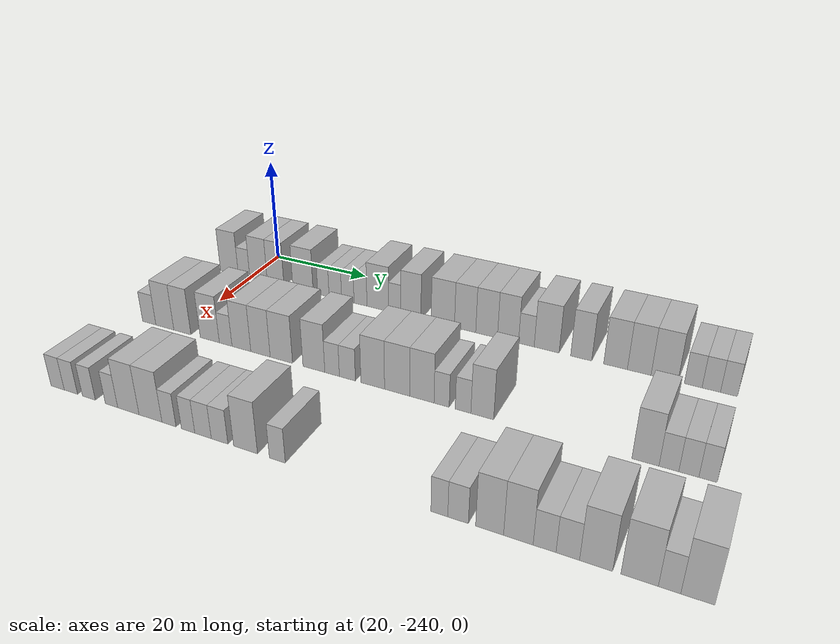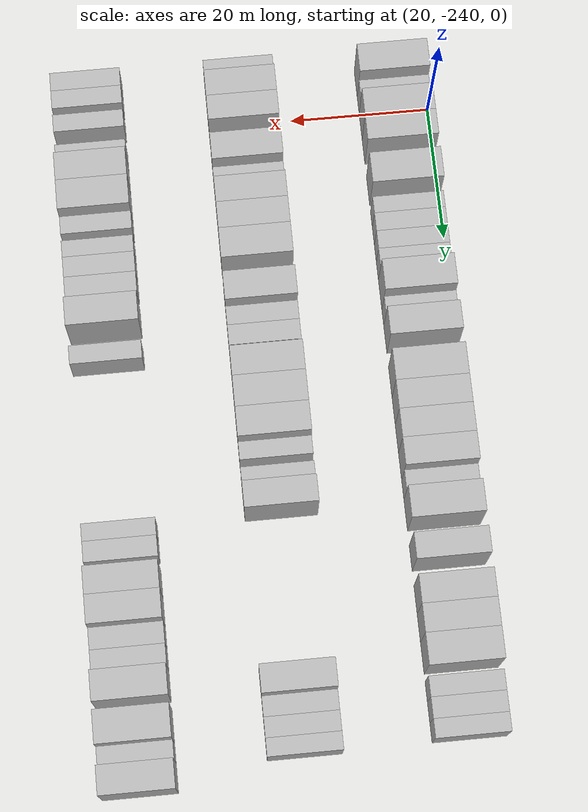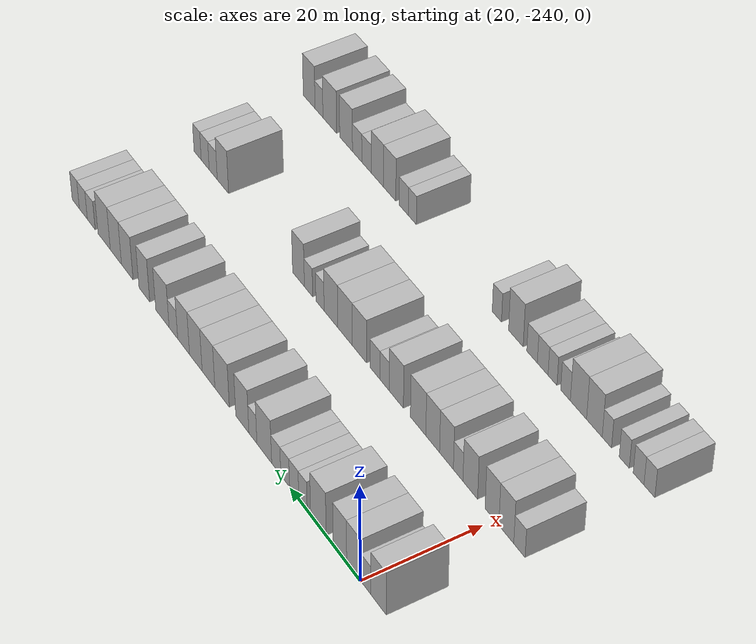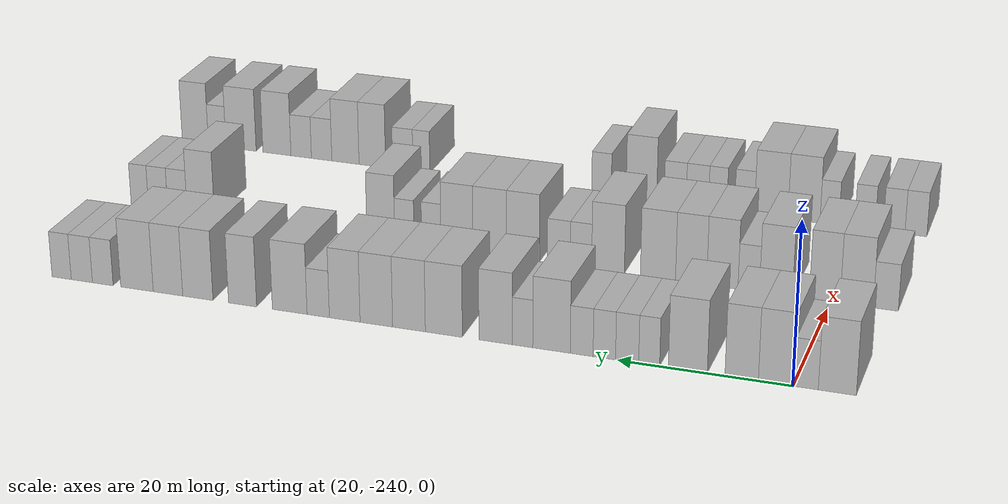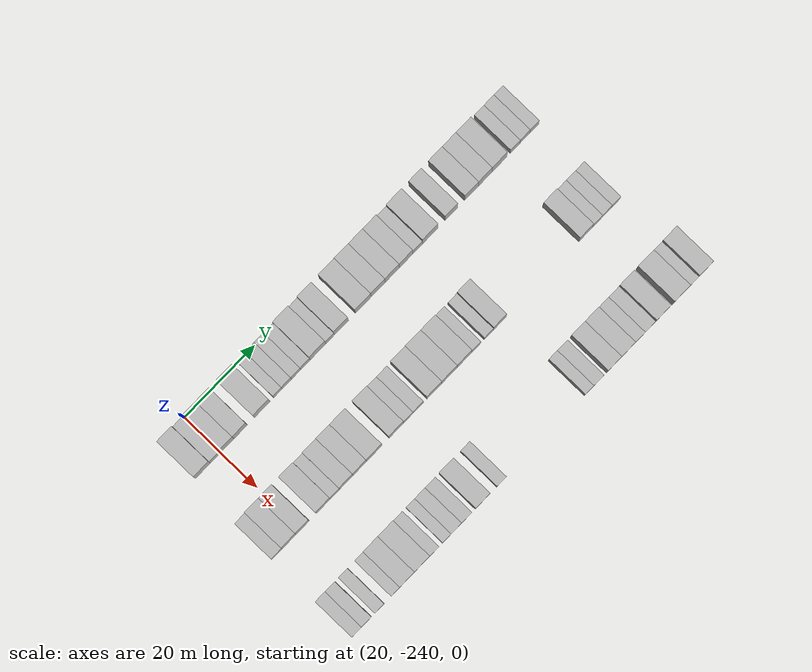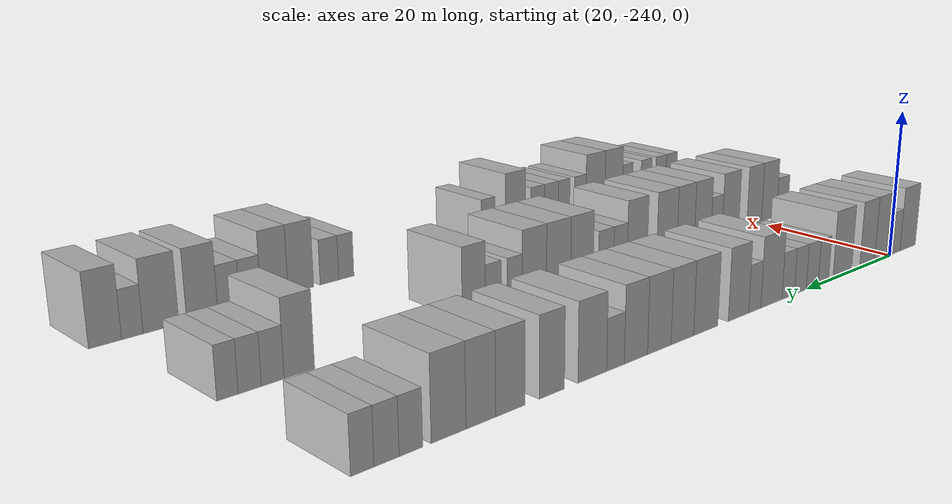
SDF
<sdf version="1.6">
 <world name="default">
  <model name="building_1">
   <static>1</static>
   <pose>25.0000 -244.8970 0 0.000000 0.000000 0.000000</pose>
   <link name="link">
    <pose>0 0 4.50 0 0 0</pose>
    <collision name="collision"><geometry><box><size>10.0000 4.2061 9.0000</size></box></geometry></collision>
    <visual name="visual">
     <cast_shadows>0</cast_shadows>
     <geometry><box><size>10.0000 4.2061 9.0000</size></box></geometry>
     <material>
      <script>
       <uri>model://HANNAS_wall/materials/scripts</uri>
       <uri>model://HANNAS_wall/materials/textures</uri>
       <name>vrc/HANNAS_wall</name>
      </script>
     </material>
    </visual>
   </link>
  </model>
  <model name="building_2">
   <static>1</static>
   <pose>25.0000 -241.4556 0 0.000000 0.000000 0.000000</pose>
   <link name="link">
    <pose>0 0 3.00 0 0 0</pose>
    <collision name="collision"><geometry><box><size>10.0000 2.6767 6.0000</size></box></geometry></collision>
    <visual name="visual">
     <cast_shadows>0</cast_shadows>
     <geometry><box><size>10.0000 2.6767 6.0000</size></box></geometry>
     <material>
      <script>
       <uri>model://HANNAS_wall/materials/scripts</uri>
       <uri>model://HANNAS_wall/materials/textures</uri>
       <name>vrc/HANNAS_wall</name>
      </script>
     </material>
    </visual>
   </link>
  </model>
  <model name="building_3">
   <static>1</static>
   <pose>25.0000 -238.1111 0 0.000000 0.000000 0.000000</pose>
   <link name="link">
    <pose>0 0 4.50 0 0 0</pose>
    <collision name="collision"><geometry><box><size>10.0000 4.0122 9.0000</size></box></geometry></collision>
    <visual name="visual">
     <cast_shadows>0</cast_shadows>
     <geometry><box><size>10.0000 4.0122 9.0000</size></box></geometry>
     <material>
      <script>
       <uri>model://HANNAS_wall/materials/scripts</uri>
       <uri>model://HANNAS_wall/materials/textures</uri>
       <name>vrc/HANNAS_wall</name>
      </script>
     </material>
    </visual>
   </link>
  </model>
  <model name="building_4">
   <static>1</static>
   <pose>25.0000 -234.2194 0 0.000000 0.000000 0.000000</pose>
   <link name="link">
    <pose>0 0 4.50 0 0 0</pose>
    <collision name="collision"><geometry><box><size>10.0000 3.7712 9.0000</size></box></geometry></collision>
    <visual name="visual">
     <cast_shadows>0</cast_shadows>
     <geometry><box><size>10.0000 3.7712 9.0000</size></box></geometry>
     <material>
      <script>
       <uri>model://HANNAS_wall/materials/scripts</uri>
       <uri>model://HANNAS_wall/materials/textures</uri>
       <name>vrc/HANNAS_wall</name>
      </script>
     </material>
    </visual>
   </link>
  </model>
  <model name="building_5">
   <static>1</static>
   <pose>25.0000 -228.1058 0 0.000000 0.000000 0.000000</pose>
   <link name="link">
    <pose>0 0 4.50 0 0 0</pose>
    <collision name="collision"><geometry><box><size>10.0000 4.4559 9.0000</size></box></geometry></collision>
    <visual name="visual">
     <cast_shadows>0</cast_shadows>
     <geometry><box><size>10.0000 4.4559 9.0000</size></box></geometry>
     <material>
      <script>
       <uri>model://HANNAS_wall/materials/scripts</uri>
       <uri>model://HANNAS_wall/materials/textures</uri>
       <name>vrc/HANNAS_wall</name>
      </script>
     </material>
    </visual>
   </link>
  </model>
  <model name="building_6">
   <static>1</static>
   <pose>25.0000 -223.6642 0 0.000000 0.000000 0.000000</pose>
   <link name="link">
    <pose>0 0 3.00 0 0 0</pose>
    <collision name="collision"><geometry><box><size>10.0000 2.4274 6.0000</size></box></geometry></collision>
    <visual name="visual">
     <cast_shadows>0</cast_shadows>
     <geometry><box><size>10.0000 2.4274 6.0000</size></box></geometry>
     <material>
      <script>
       <uri>model://HANNAS_wall/materials/scripts</uri>
       <uri>model://HANNAS_wall/materials/textures</uri>
       <name>vrc/HANNAS_wall</name>
      </script>
     </material>
    </visual>
   </link>
  </model>
  <model name="building_7">
   <static>1</static>
   <pose>25.0000 -221.1104 0 0.000000 0.000000 0.000000</pose>
   <link name="link">
    <pose>0 0 3.00 0 0 0</pose>
    <collision name="collision"><geometry><box><size>10.0000 2.6801 6.0000</size></box></geometry></collision>
    <visual name="visual">
     <cast_shadows>0</cast_shadows>
     <geometry><box><size>10.0000 2.6801 6.0000</size></box></geometry>
     <material>
      <script>
       <uri>model://HANNAS_wall/materials/scripts</uri>
       <uri>model://HANNAS_wall/materials/textures</uri>
       <name>vrc/HANNAS_wall</name>
      </script>
     </material>
    </visual>
   </link>
  </model>
  <model name="building_8">
   <static>1</static>
   <pose>25.0000 -218.4601 0 0.000000 0.000000 0.000000</pose>
   <link name="link">
    <pose>0 0 3.00 0 0 0</pose>
    <collision name="collision"><geometry><box><size>10.0000 2.6207 6.0000</size></box></geometry></collision>
    <visual name="visual">
     <cast_shadows>0</cast_shadows>
     <geometry><box><size>10.0000 2.6207 6.0000</size></box></geometry>
     <material>
      <script>
       <uri>model://HANNAS_wall/materials/scripts</uri>
       <uri>model://HANNAS_wall/materials/textures</uri>
       <name>vrc/HANNAS_wall</name>
      </script>
     </material>
    </visual>
   </link>
  </model>
  <model name="building_9">
   <static>1</static>
   <pose>25.0000 -215.8077 0 0.000000 0.000000 0.000000</pose>
   <link name="link">
    <pose>0 0 3.00 0 0 0</pose>
    <collision name="collision"><geometry><box><size>10.0000 2.6840 6.0000</size></box></geometry></collision>
    <visual name="visual">
     <cast_shadows>0</cast_shadows>
     <geometry><box><size>10.0000 2.6840 6.0000</size></box></geometry>
     <material>
      <script>
       <uri>model://HANNAS_wall/materials/scripts</uri>
       <uri>model://HANNAS_wall/materials/textures</uri>
       <name>vrc/HANNAS_wall</name>
      </script>
     </material>
    </visual>
   </link>
  </model>
  <model name="building_10">
   <static>1</static>
   <pose>25.0000 -212.2497 0 0.000000 0.000000 0.000000</pose>
   <link name="link">
    <pose>0 0 4.50 0 0 0</pose>
    <collision name="collision"><geometry><box><size>10.0000 4.4320 9.0000</size></box></geometry></collision>
    <visual name="visual">
     <cast_shadows>0</cast_shadows>
     <geometry><box><size>10.0000 4.4320 9.0000</size></box></geometry>
     <material>
      <script>
       <uri>model://HANNAS_wall/materials/scripts</uri>
       <uri>model://HANNAS_wall/materials/textures</uri>
       <name>vrc/HANNAS_wall</name>
      </script>
     </material>
    </visual>
   </link>
  </model>
  <model name="building_11">
   <static>1</static>
   <pose>25.0000 -208.8162 0 0.000000 0.000000 0.000000</pose>
   <link name="link">
    <pose>0 0 3.00 0 0 0</pose>
    <collision name="collision"><geometry><box><size>10.0000 2.4350 6.0000</size></box></geometry></collision>
    <visual name="visual">
     <cast_shadows>0</cast_shadows>
     <geometry><box><size>10.0000 2.4350 6.0000</size></box></geometry>
     <material>
      <script>
       <uri>model://HANNAS_wall/materials/scripts</uri>
       <uri>model://HANNAS_wall/materials/textures</uri>
       <name>vrc/HANNAS_wall</name>
      </script>
     </material>
    </visual>
   </link>
  </model>
  <model name="building_12">
   <static>1</static>
   <pose>25.0000 -205.5930 0 0.000000 0.000000 0.000000</pose>
   <link name="link">
    <pose>0 0 4.50 0 0 0</pose>
    <collision name="collision"><geometry><box><size>10.0000 4.0115 9.0000</size></box></geometry></collision>
    <visual name="visual">
     <cast_shadows>0</cast_shadows>
     <geometry><box><size>10.0000 4.0115 9.0000</size></box></geometry>
     <material>
      <script>
       <uri>model://HANNAS_wall/materials/scripts</uri>
       <uri>model://HANNAS_wall/materials/textures</uri>
       <name>vrc/HANNAS_wall</name>
      </script>
     </material>
    </visual>
   </link>
  </model>
  <model name="building_13">
   <static>1</static>
   <pose>25.0000 -199.3401 0 0.000000 0.000000 0.000000</pose>
   <link name="link">
    <pose>0 0 4.50 0 0 0</pose>
    <collision name="collision"><geometry><box><size>10.0000 4.4942 9.0000</size></box></geometry></collision>
    <visual name="visual">
     <cast_shadows>0</cast_shadows>
     <geometry><box><size>10.0000 4.4942 9.0000</size></box></geometry>
     <material>
      <script>
       <uri>model://HANNAS_wall/materials/scripts</uri>
       <uri>model://HANNAS_wall/materials/textures</uri>
       <name>vrc/HANNAS_wall</name>
      </script>
     </material>
    </visual>
   </link>
  </model>
  <model name="building_14">
   <static>1</static>
   <pose>25.0000 -195.0859 0 0.000000 0.000000 0.000000</pose>
   <link name="link">
    <pose>0 0 4.50 0 0 0</pose>
    <collision name="collision"><geometry><box><size>10.0000 4.0142 9.0000</size></box></geometry></collision>
    <visual name="visual">
     <cast_shadows>0</cast_shadows>
     <geometry><box><size>10.0000 4.0142 9.0000</size></box></geometry>
     <material>
      <script>
       <uri>model://HANNAS_wall/materials/scripts</uri>
       <uri>model://HANNAS_wall/materials/textures</uri>
       <name>vrc/HANNAS_wall</name>
      </script>
     </material>
    </visual>
   </link>
  </model>
  <model name="building_15">
   <static>1</static>
   <pose>25.0000 -191.0674 0 0.000000 0.000000 0.000000</pose>
   <link name="link">
    <pose>0 0 4.50 0 0 0</pose>
    <collision name="collision"><geometry><box><size>10.0000 4.0227 9.0000</size></box></geometry></collision>
    <visual name="visual">
     <cast_shadows>0</cast_shadows>
     <geometry><box><size>10.0000 4.0227 9.0000</size></box></geometry>
     <material>
      <script>
       <uri>model://HANNAS_wall/materials/scripts</uri>
       <uri>model://HANNAS_wall/materials/textures</uri>
       <name>vrc/HANNAS_wall</name>
      </script>
     </material>
    </visual>
   </link>
  </model>
  <model name="building_16">
   <static>1</static>
   <pose>25.0000 -187.1419 0 0.000000 0.000000 0.000000</pose>
   <link name="link">
    <pose>0 0 4.50 0 0 0</pose>
    <collision name="collision"><geometry><box><size>10.0000 3.8285 9.0000</size></box></geometry></collision>
    <visual name="visual">
     <cast_shadows>0</cast_shadows>
     <geometry><box><size>10.0000 3.8285 9.0000</size></box></geometry>
     <material>
      <script>
       <uri>model://HANNAS_wall/materials/scripts</uri>
       <uri>model://HANNAS_wall/materials/textures</uri>
       <name>vrc/HANNAS_wall</name>
      </script>
     </material>
    </visual>
   </link>
  </model>
  <model name="building_17">
   <static>1</static>
   <pose>25.0000 -183.8294 0 0.000000 0.000000 0.000000</pose>
   <link name="link">
    <pose>0 0 3.00 0 0 0</pose>
    <collision name="collision"><geometry><box><size>10.0000 2.7963 6.0000</size></box></geometry></collision>
    <visual name="visual">
     <cast_shadows>0</cast_shadows>
     <geometry><box><size>10.0000 2.7963 6.0000</size></box></geometry>
     <material>
      <script>
       <uri>model://HANNAS_wall/materials/scripts</uri>
       <uri>model://HANNAS_wall/materials/textures</uri>
       <name>vrc/HANNAS_wall</name>
      </script>
     </material>
    </visual>
   </link>
  </model>
  <model name="building_18">
   <static>1</static>
   <pose>25.0000 -180.2356 0 0.000000 0.000000 0.000000</pose>
   <link name="link">
    <pose>0 0 4.50 0 0 0</pose>
    <collision name="collision"><geometry><box><size>10.0000 4.3914 9.0000</size></box></geometry></collision>
    <visual name="visual">
     <cast_shadows>0</cast_shadows>
     <geometry><box><size>10.0000 4.3914 9.0000</size></box></geometry>
     <material>
      <script>
       <uri>model://HANNAS_wall/materials/scripts</uri>
       <uri>model://HANNAS_wall/materials/textures</uri>
       <name>vrc/HANNAS_wall</name>
      </script>
     </material>
    </visual>
   </link>
  </model>
  <model name="building_19">
   <static>1</static>
   <pose>25.0000 -174.2396 0 0.000000 0.000000 0.000000</pose>
   <link name="link">
    <pose>0 0 4.50 0 0 0</pose>
    <collision name="collision"><geometry><box><size>10.0000 3.6005 9.0000</size></box></geometry></collision>
    <visual name="visual">
     <cast_shadows>0</cast_shadows>
     <geometry><box><size>10.0000 3.6005 9.0000</size></box></geometry>
     <material>
      <script>
       <uri>model://HANNAS_wall/materials/scripts</uri>
       <uri>model://HANNAS_wall/materials/textures</uri>
       <name>vrc/HANNAS_wall</name>
      </script>
     </material>
    </visual>
   </link>
  </model>
  <model name="building_20">
   <static>1</static>
   <pose>25.0000 -168.4787 0 0.000000 0.000000 0.000000</pose>
   <link name="link">
    <pose>0 0 4.50 0 0 0</pose>
    <collision name="collision"><geometry><box><size>10.0000 3.9212 9.0000</size></box></geometry></collision>
    <visual name="visual">
     <cast_shadows>0</cast_shadows>
     <geometry><box><size>10.0000 3.9212 9.0000</size></box></geometry>
     <material>
      <script>
       <uri>model://HANNAS_wall/materials/scripts</uri>
       <uri>model://HANNAS_wall/materials/textures</uri>
       <name>vrc/HANNAS_wall</name>
      </script>
     </material>
    </visual>
   </link>
  </model>
  <model name="building_21">
   <static>1</static>
   <pose>25.0000 -164.5937 0 0.000000 0.000000 0.000000</pose>
   <link name="link">
    <pose>0 0 4.50 0 0 0</pose>
    <collision name="collision"><geometry><box><size>10.0000 3.8489 9.0000</size></box></geometry></collision>
    <visual name="visual">
     <cast_shadows>0</cast_shadows>
     <geometry><box><size>10.0000 3.8489 9.0000</size></box></geometry>
     <material>
      <script>
       <uri>model://HANNAS_wall/materials/scripts</uri>
       <uri>model://HANNAS_wall/materials/textures</uri>
       <name>vrc/HANNAS_wall</name>
      </script>
     </material>
    </visual>
   </link>
  </model>
  <model name="building_22">
   <static>1</static>
   <pose>25.0000 -160.5291 0 0.000000 0.000000 0.000000</pose>
   <link name="link">
    <pose>0 0 4.50 0 0 0</pose>
    <collision name="collision"><geometry><box><size>10.0000 4.2802 9.0000</size></box></geometry></collision>
    <visual name="visual">
     <cast_shadows>0</cast_shadows>
     <geometry><box><size>10.0000 4.2802 9.0000</size></box></geometry>
     <material>
      <script>
       <uri>model://HANNAS_wall/materials/scripts</uri>
       <uri>model://HANNAS_wall/materials/textures</uri>
       <name>vrc/HANNAS_wall</name>
      </script>
     </material>
    </visual>
   </link>
  </model>
  <model name="building_23">
   <static>1</static>
   <pose>25.0000 -156.0128 0 0.000000 0.000000 0.000000</pose>
   <link name="link">
    <pose>0 0 3.00 0 0 0</pose>
    <collision name="collision"><geometry><box><size>10.0000 2.7525 6.0000</size></box></geometry></collision>
    <visual name="visual">
     <cast_shadows>0</cast_shadows>
     <geometry><box><size>10.0000 2.7525 6.0000</size></box></geometry>
     <material>
      <script>
       <uri>model://HANNAS_wall/materials/scripts</uri>
       <uri>model://HANNAS_wall/materials/textures</uri>
       <name>vrc/HANNAS_wall</name>
      </script>
     </material>
    </visual>
   </link>
  </model>
  <model name="building_24">
   <static>1</static>
   <pose>25.0000 -153.2260 0 0.000000 0.000000 0.000000</pose>
   <link name="link">
    <pose>0 0 3.00 0 0 0</pose>
    <collision name="collision"><geometry><box><size>10.0000 2.8211 6.0000</size></box></geometry></collision>
    <visual name="visual">
     <cast_shadows>0</cast_shadows>
     <geometry><box><size>10.0000 2.8211 6.0000</size></box></geometry>
     <material>
      <script>
       <uri>model://HANNAS_wall/materials/scripts</uri>
       <uri>model://HANNAS_wall/materials/textures</uri>
       <name>vrc/HANNAS_wall</name>
      </script>
     </material>
    </visual>
   </link>
  </model>
  <model name="building_25">
   <static>1</static>
   <pose>25.0000 -150.5293 0 0.000000 0.000000 0.000000</pose>
   <link name="link">
    <pose>0 0 3.00 0 0 0</pose>
    <collision name="collision"><geometry><box><size>10.0000 2.5723 6.0000</size></box></geometry></collision>
    <visual name="visual">
     <cast_shadows>0</cast_shadows>
     <geometry><box><size>10.0000 2.5723 6.0000</size></box></geometry>
     <material>
      <script>
       <uri>model://HANNAS_wall/materials/scripts</uri>
       <uri>model://HANNAS_wall/materials/textures</uri>
       <name>vrc/HANNAS_wall</name>
      </script>
     </material>
    </visual>
   </link>
  </model>
  <model name="building_122">
   <static>1</static>
   <pose>47.0000 -246.5230 0 0.000000 0.000000 0.000000</pose>
   <link name="link">
    <pose>0 0 3.00 0 0 0</pose>
    <collision name="collision"><geometry><box><size>10.0000 2.9541 6.0000</size></box></geometry></collision>
    <visual name="visual">
     <cast_shadows>0</cast_shadows>
     <geometry><box><size>10.0000 2.9541 6.0000</size></box></geometry>
     <material>
      <script>
       <uri>model://HANNAS_wall/materials/scripts</uri>
       <uri>model://HANNAS_wall/materials/textures</uri>
       <name>vrc/HANNAS_wall</name>
      </script>
     </material>
    </visual>
   </link>
  </model>
  <model name="building_123">
   <static>1</static>
   <pose>47.0000 -243.0796 0 0.000000 0.000000 0.000000</pose>
   <link name="link">
    <pose>0 0 4.50 0 0 0</pose>
    <collision name="collision"><geometry><box><size>10.0000 3.9327 9.0000</size></box></geometry></collision>
    <visual name="visual">
     <cast_shadows>0</cast_shadows>
     <geometry><box><size>10.0000 3.9327 9.0000</size></box></geometry>
     <material>
      <script>
       <uri>model://HANNAS_wall/materials/scripts</uri>
       <uri>model://HANNAS_wall/materials/textures</uri>
       <name>vrc/HANNAS_wall</name>
      </script>
     </material>
    </visual>
   </link>
  </model>
  <model name="building_124">
   <static>1</static>
   <pose>47.0000 -239.2722 0 0.000000 0.000000 0.000000</pose>
   <link name="link">
    <pose>0 0 4.50 0 0 0</pose>
    <collision name="collision"><geometry><box><size>10.0000 3.6822 9.0000</size></box></geometry></collision>
    <visual name="visual">
     <cast_shadows>0</cast_shadows>
     <geometry><box><size>10.0000 3.6822 9.0000</size></box></geometry>
     <material>
      <script>
       <uri>model://HANNAS_wall/materials/scripts</uri>
       <uri>model://HANNAS_wall/materials/textures</uri>
       <name>vrc/HANNAS_wall</name>
      </script>
     </material>
    </visual>
   </link>
  </model>
  <model name="building_125">
   <static>1</static>
   <pose>47.0000 -233.4338 0 0.000000 0.000000 0.000000</pose>
   <link name="link">
    <pose>0 0 4.50 0 0 0</pose>
    <collision name="collision"><geometry><box><size>10.0000 3.9946 9.0000</size></box></geometry></collision>
    <visual name="visual">
     <cast_shadows>0</cast_shadows>
     <geometry><box><size>10.0000 3.9946 9.0000</size></box></geometry>
     <material>
      <script>
       <uri>model://HANNAS_wall/materials/scripts</uri>
       <uri>model://HANNAS_wall/materials/textures</uri>
       <name>vrc/HANNAS_wall</name>
      </script>
     </material>
    </visual>
   </link>
  </model>
  <model name="building_126">
   <static>1</static>
   <pose>47.0000 -230.1263 0 0.000000 0.000000 0.000000</pose>
   <link name="link">
    <pose>0 0 3.00 0 0 0</pose>
    <collision name="collision"><geometry><box><size>10.0000 2.6204 6.0000</size></box></geometry></collision>
    <visual name="visual">
     <cast_shadows>0</cast_shadows>
     <geometry><box><size>10.0000 2.6204 6.0000</size></box></geometry>
     <material>
      <script>
       <uri>model://HANNAS_wall/materials/scripts</uri>
       <uri>model://HANNAS_wall/materials/textures</uri>
       <name>vrc/HANNAS_wall</name>
      </script>
     </material>
    </visual>
   </link>
  </model>
  <model name="building_127">
   <static>1</static>
   <pose>47.0000 -226.9053 0 0.000000 0.000000 0.000000</pose>
   <link name="link">
    <pose>0 0 4.50 0 0 0</pose>
    <collision name="collision"><geometry><box><size>10.0000 3.8215 9.0000</size></box></geometry></collision>
    <visual name="visual">
     <cast_shadows>0</cast_shadows>
     <geometry><box><size>10.0000 3.8215 9.0000</size></box></geometry>
     <material>
      <script>
       <uri>model://HANNAS_wall/materials/scripts</uri>
       <uri>model://HANNAS_wall/materials/textures</uri>
       <name>vrc/HANNAS_wall</name>
      </script>
     </material>
    </visual>
   </link>
  </model>
  <model name="building_128">
   <static>1</static>
   <pose>47.0000 -223.0679 0 0.000000 0.000000 0.000000</pose>
   <link name="link">
    <pose>0 0 4.50 0 0 0</pose>
    <collision name="collision"><geometry><box><size>10.0000 3.8533 9.0000</size></box></geometry></collision>
    <visual name="visual">
     <cast_shadows>0</cast_shadows>
     <geometry><box><size>10.0000 3.8533 9.0000</size></box></geometry>
     <material>
      <script>
       <uri>model://HANNAS_wall/materials/scripts</uri>
       <uri>model://HANNAS_wall/materials/textures</uri>
       <name>vrc/HANNAS_wall</name>
      </script>
     </material>
    </visual>
   </link>
  </model>
  <model name="building_129">
   <static>1</static>
   <pose>47.0000 -218.9601 0 0.000000 0.000000 0.000000</pose>
   <link name="link">
    <pose>0 0 4.50 0 0 0</pose>
    <collision name="collision"><geometry><box><size>10.0000 4.3624 9.0000</size></box></geometry></collision>
    <visual name="visual">
     <cast_shadows>0</cast_shadows>
     <geometry><box><size>10.0000 4.3624 9.0000</size></box></geometry>
     <material>
      <script>
       <uri>model://HANNAS_wall/materials/scripts</uri>
       <uri>model://HANNAS_wall/materials/textures</uri>
       <name>vrc/HANNAS_wall</name>
      </script>
     </material>
    </visual>
   </link>
  </model>
  <model name="building_130">
   <static>1</static>
   <pose>47.0000 -212.7164 0 0.000000 0.000000 0.000000</pose>
   <link name="link">
    <pose>0 0 4.50 0 0 0</pose>
    <collision name="collision"><geometry><box><size>10.0000 4.1249 9.0000</size></box></geometry></collision>
    <visual name="visual">
     <cast_shadows>0</cast_shadows>
     <geometry><box><size>10.0000 4.1249 9.0000</size></box></geometry>
     <material>
      <script>
       <uri>model://HANNAS_wall/materials/scripts</uri>
       <uri>model://HANNAS_wall/materials/textures</uri>
       <name>vrc/HANNAS_wall</name>
      </script>
     </material>
    </visual>
   </link>
  </model>
  <model name="building_131">
   <static>1</static>
   <pose>47.0000 -209.3025 0 0.000000 0.000000 0.000000</pose>
   <link name="link">
    <pose>0 0 3.00 0 0 0</pose>
    <collision name="collision"><geometry><box><size>10.0000 2.7029 6.0000</size></box></geometry></collision>
    <visual name="visual">
     <cast_shadows>0</cast_shadows>
     <geometry><box><size>10.0000 2.7029 6.0000</size></box></geometry>
     <material>
      <script>
       <uri>model://HANNAS_wall/materials/scripts</uri>
       <uri>model://HANNAS_wall/materials/textures</uri>
       <name>vrc/HANNAS_wall</name>
      </script>
     </material>
    </visual>
   </link>
  </model>
  <model name="building_132">
   <static>1</static>
   <pose>47.0000 -206.4843 0 0.000000 0.000000 0.000000</pose>
   <link name="link">
    <pose>0 0 3.00 0 0 0</pose>
    <collision name="collision"><geometry><box><size>10.0000 2.9336 6.0000</size></box></geometry></collision>
    <visual name="visual">
     <cast_shadows>0</cast_shadows>
     <geometry><box><size>10.0000 2.9336 6.0000</size></box></geometry>
     <material>
      <script>
       <uri>model://HANNAS_wall/materials/scripts</uri>
       <uri>model://HANNAS_wall/materials/textures</uri>
       <name>vrc/HANNAS_wall</name>
      </script>
     </material>
    </visual>
   </link>
  </model>
  <model name="building_133">
   <static>1</static>
   <pose>47.0000 -201.9062 0 0.000000 0.000000 0.000000</pose>
   <link name="link">
    <pose>0 0 4.50 0 0 0</pose>
    <collision name="collision"><geometry><box><size>10.0000 4.2226 9.0000</size></box></geometry></collision>
    <visual name="visual">
     <cast_shadows>0</cast_shadows>
     <geometry><box><size>10.0000 4.2226 9.0000</size></box></geometry>
     <material>
      <script>
       <uri>model://HANNAS_wall/materials/scripts</uri>
       <uri>model://HANNAS_wall/materials/textures</uri>
       <name>vrc/HANNAS_wall</name>
      </script>
     </material>
    </visual>
   </link>
  </model>
  <model name="building_134">
   <static>1</static>
   <pose>47.0000 -197.6043 0 0.000000 0.000000 0.000000</pose>
   <link name="link">
    <pose>0 0 4.50 0 0 0</pose>
    <collision name="collision"><geometry><box><size>10.0000 4.3812 9.0000</size></box></geometry></collision>
    <visual name="visual">
     <cast_shadows>0</cast_shadows>
     <geometry><box><size>10.0000 4.3812 9.0000</size></box></geometry>
     <material>
      <script>
       <uri>model://HANNAS_wall/materials/scripts</uri>
       <uri>model://HANNAS_wall/materials/textures</uri>
       <name>vrc/HANNAS_wall</name>
      </script>
     </material>
    </visual>
   </link>
  </model>
  <model name="building_135">
   <static>1</static>
   <pose>47.0000 -193.3291 0 0.000000 0.000000 0.000000</pose>
   <link name="link">
    <pose>0 0 4.50 0 0 0</pose>
    <collision name="collision"><geometry><box><size>10.0000 4.1691 9.0000</size></box></geometry></collision>
    <visual name="visual">
     <cast_shadows>0</cast_shadows>
     <geometry><box><size>10.0000 4.1691 9.0000</size></box></geometry>
     <material>
      <script>
       <uri>model://HANNAS_wall/materials/scripts</uri>
       <uri>model://HANNAS_wall/materials/textures</uri>
       <name>vrc/HANNAS_wall</name>
      </script>
     </material>
    </visual>
   </link>
  </model>
  <model name="building_136">
   <static>1</static>
   <pose>47.0000 -189.9757 0 0.000000 0.000000 0.000000</pose>
   <link name="link">
    <pose>0 0 3.00 0 0 0</pose>
    <collision name="collision"><geometry><box><size>10.0000 2.5377 6.0000</size></box></geometry></collision>
    <visual name="visual">
     <cast_shadows>0</cast_shadows>
     <geometry><box><size>10.0000 2.5377 6.0000</size></box></geometry>
     <material>
      <script>
       <uri>model://HANNAS_wall/materials/scripts</uri>
       <uri>model://HANNAS_wall/materials/textures</uri>
       <name>vrc/HANNAS_wall</name>
      </script>
     </material>
    </visual>
   </link>
  </model>
  <model name="building_137">
   <static>1</static>
   <pose>47.0000 -186.4244 0 0.000000 0.000000 0.000000</pose>
   <link name="link">
    <pose>0 0 3.00 0 0 0</pose>
    <collision name="collision"><geometry><box><size>10.0000 2.5648 6.0000</size></box></geometry></collision>
    <visual name="visual">
     <cast_shadows>0</cast_shadows>
     <geometry><box><size>10.0000 2.5648 6.0000</size></box></geometry>
     <material>
      <script>
       <uri>model://HANNAS_wall/materials/scripts</uri>
       <uri>model://HANNAS_wall/materials/textures</uri>
       <name>vrc/HANNAS_wall</name>
      </script>
     </material>
    </visual>
   </link>
  </model>
  <model name="building_138">
   <static>1</static>
   <pose>47.0000 -183.2963 0 0.000000 0.000000 0.000000</pose>
   <link name="link">
    <pose>0 0 4.50 0 0 0</pose>
    <collision name="collision"><geometry><box><size>10.0000 3.6914 9.0000</size></box></geometry></collision>
    <visual name="visual">
     <cast_shadows>0</cast_shadows>
     <geometry><box><size>10.0000 3.6914 9.0000</size></box></geometry>
     <material>
      <script>
       <uri>model://HANNAS_wall/materials/scripts</uri>
       <uri>model://HANNAS_wall/materials/textures</uri>
       <name>vrc/HANNAS_wall</name>
      </script>
     </material>
    </visual>
   </link>
  </model>
  <model name="building_139">
   <static>1</static>
   <pose>47.0000 -158.7343 0 0.000000 0.000000 0.000000</pose>
   <link name="link">
    <pose>0 0 4.50 0 0 0</pose>
    <collision name="collision"><geometry><box><size>10.0000 3.8109 9.0000</size></box></geometry></collision>
    <visual name="visual">
     <cast_shadows>0</cast_shadows>
     <geometry><box><size>10.0000 3.8109 9.0000</size></box></geometry>
     <material>
      <script>
       <uri>model://HANNAS_wall/materials/scripts</uri>
       <uri>model://HANNAS_wall/materials/textures</uri>
       <name>vrc/HANNAS_wall</name>
      </script>
     </material>
    </visual>
   </link>
  </model>
  <model name="building_140">
   <static>1</static>
   <pose>47.0000 -155.4645 0 0.000000 0.000000 0.000000</pose>
   <link name="link">
    <pose>0 0 3.00 0 0 0</pose>
    <collision name="collision"><geometry><box><size>10.0000 2.7287 6.0000</size></box></geometry></collision>
    <visual name="visual">
     <cast_shadows>0</cast_shadows>
     <geometry><box><size>10.0000 2.7287 6.0000</size></box></geometry>
     <material>
      <script>
       <uri>model://HANNAS_wall/materials/scripts</uri>
       <uri>model://HANNAS_wall/materials/textures</uri>
       <name>vrc/HANNAS_wall</name>
      </script>
     </material>
    </visual>
   </link>
  </model>
  <model name="building_141">
   <static>1</static>
   <pose>47.0000 -152.7420 0 0.000000 0.000000 0.000000</pose>
   <link name="link">
    <pose>0 0 3.00 0 0 0</pose>
    <collision name="collision"><geometry><box><size>10.0000 2.7165 6.0000</size></box></geometry></collision>
    <visual name="visual">
     <cast_shadows>0</cast_shadows>
     <geometry><box><size>10.0000 2.7165 6.0000</size></box></geometry>
     <material>
      <script>
       <uri>model://HANNAS_wall/materials/scripts</uri>
       <uri>model://HANNAS_wall/materials/textures</uri>
       <name>vrc/HANNAS_wall</name>
      </script>
     </material>
    </visual>
   </link>
  </model>
  <model name="building_142">
   <static>1</static>
   <pose>47.0000 -150.1592 0 0.000000 0.000000 0.000000</pose>
   <link name="link">
    <pose>0 0 3.00 0 0 0</pose>
    <collision name="collision"><geometry><box><size>10.0000 2.4489 6.0000</size></box></geometry></collision>
    <visual name="visual">
     <cast_shadows>0</cast_shadows>
     <geometry><box><size>10.0000 2.4489 6.0000</size></box></geometry>
     <material>
      <script>
       <uri>model://HANNAS_wall/materials/scripts</uri>
       <uri>model://HANNAS_wall/materials/textures</uri>
       <name>vrc/HANNAS_wall</name>
      </script>
     </material>
    </visual>
   </link>
  </model>
  <model name="building_229">
   <static>1</static>
   <pose>69.0000 -246.6234 0 0.000000 0.000000 0.000000</pose>
   <link name="link">
    <pose>0 0 3.00 0 0 0</pose>
    <collision name="collision"><geometry><box><size>10.0000 2.7533 6.0000</size></box></geometry></collision>
    <visual name="visual">
     <cast_shadows>0</cast_shadows>
     <geometry><box><size>10.0000 2.7533 6.0000</size></box></geometry>
     <material>
      <script>
       <uri>model://HANNAS_wall/materials/scripts</uri>
       <uri>model://HANNAS_wall/materials/textures</uri>
       <name>vrc/HANNAS_wall</name>
      </script>
     </material>
    </visual>
   </link>
  </model>
  <model name="building_230">
   <static>1</static>
   <pose>69.0000 -243.8731 0 0.000000 0.000000 0.000000</pose>
   <link name="link">
    <pose>0 0 3.00 0 0 0</pose>
    <collision name="collision"><geometry><box><size>10.0000 2.7473 6.0000</size></box></geometry></collision>
    <visual name="visual">
     <cast_shadows>0</cast_shadows>
     <geometry><box><size>10.0000 2.7473 6.0000</size></box></geometry>
     <material>
      <script>
       <uri>model://HANNAS_wall/materials/scripts</uri>
       <uri>model://HANNAS_wall/materials/textures</uri>
       <name>vrc/HANNAS_wall</name>
      </script>
     </material>
    </visual>
   </link>
  </model>
  <model name="building_231">
   <static>1</static>
   <pose>69.0000 -240.1968 0 0.000000 0.000000 0.000000</pose>
   <link name="link">
    <pose>0 0 3.00 0 0 0</pose>
    <collision name="collision"><geometry><box><size>10.0000 2.6052 6.0000</size></box></geometry></collision>
    <visual name="visual">
     <cast_shadows>0</cast_shadows>
     <geometry><box><size>10.0000 2.6052 6.0000</size></box></geometry>
     <material>
      <script>
       <uri>model://HANNAS_wall/materials/scripts</uri>
       <uri>model://HANNAS_wall/materials/textures</uri>
       <name>vrc/HANNAS_wall</name>
      </script>
     </material>
    </visual>
   </link>
  </model>
  <model name="building_232">
   <static>1</static>
   <pose>69.0000 -235.6771 0 0.000000 0.000000 0.000000</pose>
   <link name="link">
    <pose>0 0 3.00 0 0 0</pose>
    <collision name="collision"><geometry><box><size>10.0000 2.4342 6.0000</size></box></geometry></collision>
    <visual name="visual">
     <cast_shadows>0</cast_shadows>
     <geometry><box><size>10.0000 2.4342 6.0000</size></box></geometry>
     <material>
      <script>
       <uri>model://HANNAS_wall/materials/scripts</uri>
       <uri>model://HANNAS_wall/materials/textures</uri>
       <name>vrc/HANNAS_wall</name>
      </script>
     </material>
    </visual>
   </link>
  </model>
  <model name="building_233">
   <static>1</static>
   <pose>69.0000 -232.3935 0 0.000000 0.000000 0.000000</pose>
   <link name="link">
    <pose>0 0 4.50 0 0 0</pose>
    <collision name="collision"><geometry><box><size>10.0000 4.1331 9.0000</size></box></geometry></collision>
    <visual name="visual">
     <cast_shadows>0</cast_shadows>
     <geometry><box><size>10.0000 4.1331 9.0000</size></box></geometry>
     <material>
      <script>
       <uri>model://HANNAS_wall/materials/scripts</uri>
       <uri>model://HANNAS_wall/materials/textures</uri>
       <name>vrc/HANNAS_wall</name>
      </script>
     </material>
    </visual>
   </link>
  </model>
  <model name="building_234">
   <static>1</static>
   <pose>69.0000 -228.1601 0 0.000000 0.000000 0.000000</pose>
   <link name="link">
    <pose>0 0 4.50 0 0 0</pose>
    <collision name="collision"><geometry><box><size>10.0000 4.3336 9.0000</size></box></geometry></collision>
    <visual name="visual">
     <cast_shadows>0</cast_shadows>
     <geometry><box><size>10.0000 4.3336 9.0000</size></box></geometry>
     <material>
      <script>
       <uri>model://HANNAS_wall/materials/scripts</uri>
       <uri>model://HANNAS_wall/materials/textures</uri>
       <name>vrc/HANNAS_wall</name>
      </script>
     </material>
    </visual>
   </link>
  </model>
  <model name="building_235">
   <static>1</static>
   <pose>69.0000 -224.6879 0 0.000000 0.000000 0.000000</pose>
   <link name="link">
    <pose>0 0 3.00 0 0 0</pose>
    <collision name="collision"><geometry><box><size>10.0000 2.6108 6.0000</size></box></geometry></collision>
    <visual name="visual">
     <cast_shadows>0</cast_shadows>
     <geometry><box><size>10.0000 2.6108 6.0000</size></box></geometry>
     <material>
      <script>
       <uri>model://HANNAS_wall/materials/scripts</uri>
       <uri>model://HANNAS_wall/materials/textures</uri>
       <name>vrc/HANNAS_wall</name>
      </script>
     </material>
    </visual>
   </link>
  </model>
  <model name="building_236">
   <static>1</static>
   <pose>69.0000 -221.1692 0 0.000000 0.000000 0.000000</pose>
   <link name="link">
    <pose>0 0 3.00 0 0 0</pose>
    <collision name="collision"><geometry><box><size>10.0000 2.4267 6.0000</size></box></geometry></collision>
    <visual name="visual">
     <cast_shadows>0</cast_shadows>
     <geometry><box><size>10.0000 2.4267 6.0000</size></box></geometry>
     <material>
      <script>
       <uri>model://HANNAS_wall/materials/scripts</uri>
       <uri>model://HANNAS_wall/materials/textures</uri>
       <name>vrc/HANNAS_wall</name>
      </script>
     </material>
    </visual>
   </link>
  </model>
  <model name="building_237">
   <static>1</static>
   <pose>69.0000 -218.4774 0 0.000000 0.000000 0.000000</pose>
   <link name="link">
    <pose>0 0 3.00 0 0 0</pose>
    <collision name="collision"><geometry><box><size>10.0000 2.9570 6.0000</size></box></geometry></collision>
    <visual name="visual">
     <cast_shadows>0</cast_shadows>
     <geometry><box><size>10.0000 2.9570 6.0000</size></box></geometry>
     <material>
      <script>
       <uri>model://HANNAS_wall/materials/scripts</uri>
       <uri>model://HANNAS_wall/materials/textures</uri>
       <name>vrc/HANNAS_wall</name>
      </script>
     </material>
    </visual>
   </link>
  </model>
  <model name="building_238">
   <static>1</static>
   <pose>69.0000 -215.5367 0 0.000000 0.000000 0.000000</pose>
   <link name="link">
    <pose>0 0 3.00 0 0 0</pose>
    <collision name="collision"><geometry><box><size>10.0000 2.9245 6.0000</size></box></geometry></collision>
    <visual name="visual">
     <cast_shadows>0</cast_shadows>
     <geometry><box><size>10.0000 2.9245 6.0000</size></box></geometry>
     <material>
      <script>
       <uri>model://HANNAS_wall/materials/scripts</uri>
       <uri>model://HANNAS_wall/materials/textures</uri>
       <name>vrc/HANNAS_wall</name>
      </script>
     </material>
    </visual>
   </link>
  </model>
  <model name="building_239">
   <static>1</static>
   <pose>69.0000 -211.0267 0 0.000000 0.000000 0.000000</pose>
   <link name="link">
    <pose>0 0 4.50 0 0 0</pose>
    <collision name="collision"><geometry><box><size>10.0000 4.0953 9.0000</size></box></geometry></collision>
    <visual name="visual">
     <cast_shadows>0</cast_shadows>
     <geometry><box><size>10.0000 4.0953 9.0000</size></box></geometry>
     <material>
      <script>
       <uri>model://HANNAS_wall/materials/scripts</uri>
       <uri>model://HANNAS_wall/materials/textures</uri>
       <name>vrc/HANNAS_wall</name>
      </script>
     </material>
    </visual>
   </link>
  </model>
  <model name="building_240">
   <static>1</static>
   <pose>69.0000 -205.6554 0 0.000000 0.000000 0.000000</pose>
   <link name="link">
    <pose>0 0 3.00 0 0 0</pose>
    <collision name="collision"><geometry><box><size>10.0000 2.6475 6.0000</size></box></geometry></collision>
    <visual name="visual">
     <cast_shadows>0</cast_shadows>
     <geometry><box><size>10.0000 2.6475 6.0000</size></box></geometry>
     <material>
      <script>
       <uri>model://HANNAS_wall/materials/scripts</uri>
       <uri>model://HANNAS_wall/materials/textures</uri>
       <name>vrc/HANNAS_wall</name>
      </script>
     </material>
    </visual>
   </link>
  </model>
  <model name="building_241">
   <static>1</static>
   <pose>69.0000 -180.7210 0 0.000000 0.000000 0.000000</pose>
   <link name="link">
    <pose>0 0 3.00 0 0 0</pose>
    <collision name="collision"><geometry><box><size>10.0000 2.4071 6.0000</size></box></geometry></collision>
    <visual name="visual">
     <cast_shadows>0</cast_shadows>
     <geometry><box><size>10.0000 2.4071 6.0000</size></box></geometry>
     <material>
      <script>
       <uri>model://HANNAS_wall/materials/scripts</uri>
       <uri>model://HANNAS_wall/materials/textures</uri>
       <name>vrc/HANNAS_wall</name>
      </script>
     </material>
    </visual>
   </link>
  </model>
  <model name="building_242">
   <static>1</static>
   <pose>69.0000 -178.0765 0 0.000000 0.000000 0.000000</pose>
   <link name="link">
    <pose>0 0 3.00 0 0 0</pose>
    <collision name="collision"><geometry><box><size>10.0000 2.8818 6.0000</size></box></geometry></collision>
    <visual name="visual">
     <cast_shadows>0</cast_shadows>
     <geometry><box><size>10.0000 2.8818 6.0000</size></box></geometry>
     <material>
      <script>
       <uri>model://HANNAS_wall/materials/scripts</uri>
       <uri>model://HANNAS_wall/materials/textures</uri>
       <name>vrc/HANNAS_wall</name>
      </script>
     </material>
    </visual>
   </link>
  </model>
  <model name="building_243">
   <static>1</static>
   <pose>69.0000 -173.7313 0 0.000000 0.000000 0.000000</pose>
   <link name="link">
    <pose>0 0 4.50 0 0 0</pose>
    <collision name="collision"><geometry><box><size>10.0000 3.8087 9.0000</size></box></geometry></collision>
    <visual name="visual">
     <cast_shadows>0</cast_shadows>
     <geometry><box><size>10.0000 3.8087 9.0000</size></box></geometry>
     <material>
      <script>
       <uri>model://HANNAS_wall/materials/scripts</uri>
       <uri>model://HANNAS_wall/materials/textures</uri>
       <name>vrc/HANNAS_wall</name>
      </script>
     </material>
    </visual>
   </link>
  </model>
  <model name="building_244">
   <static>1</static>
   <pose>69.0000 -169.8642 0 0.000000 0.000000 0.000000</pose>
   <link name="link">
    <pose>0 0 4.50 0 0 0</pose>
    <collision name="collision"><geometry><box><size>10.0000 3.9255 9.0000</size></box></geometry></collision>
    <visual name="visual">
     <cast_shadows>0</cast_shadows>
     <geometry><box><size>10.0000 3.9255 9.0000</size></box></geometry>
     <material>
      <script>
       <uri>model://HANNAS_wall/materials/scripts</uri>
       <uri>model://HANNAS_wall/materials/textures</uri>
       <name>vrc/HANNAS_wall</name>
      </script>
     </material>
    </visual>
   </link>
  </model>
  <model name="building_245">
   <static>1</static>
   <pose>69.0000 -166.4170 0 0.000000 0.000000 0.000000</pose>
   <link name="link">
    <pose>0 0 3.00 0 0 0</pose>
    <collision name="collision"><geometry><box><size>10.0000 2.9689 6.0000</size></box></geometry></collision>
    <visual name="visual">
     <cast_shadows>0</cast_shadows>
     <geometry><box><size>10.0000 2.9689 6.0000</size></box></geometry>
     <material>
      <script>
       <uri>model://HANNAS_wall/materials/scripts</uri>
       <uri>model://HANNAS_wall/materials/textures</uri>
       <name>vrc/HANNAS_wall</name>
      </script>
     </material>
    </visual>
   </link>
  </model>
  <model name="building_246">
   <static>1</static>
   <pose>69.0000 -163.4374 0 0.000000 0.000000 0.000000</pose>
   <link name="link">
    <pose>0 0 3.00 0 0 0</pose>
    <collision name="collision"><geometry><box><size>10.0000 2.9903 6.0000</size></box></geometry></collision>
    <visual name="visual">
     <cast_shadows>0</cast_shadows>
     <geometry><box><size>10.0000 2.9903 6.0000</size></box></geometry>
     <material>
      <script>
       <uri>model://HANNAS_wall/materials/scripts</uri>
       <uri>model://HANNAS_wall/materials/textures</uri>
       <name>vrc/HANNAS_wall</name>
      </script>
     </material>
    </visual>
   </link>
  </model>
  <model name="building_247">
   <static>1</static>
   <pose>69.0000 -159.8829 0 0.000000 0.000000 0.000000</pose>
   <link name="link">
    <pose>0 0 4.50 0 0 0</pose>
    <collision name="collision"><geometry><box><size>10.0000 4.1186 9.0000</size></box></geometry></collision>
    <visual name="visual">
     <cast_shadows>0</cast_shadows>
     <geometry><box><size>10.0000 4.1186 9.0000</size></box></geometry>
     <material>
      <script>
       <uri>model://HANNAS_wall/materials/scripts</uri>
       <uri>model://HANNAS_wall/materials/textures</uri>
       <name>vrc/HANNAS_wall</name>
      </script>
     </material>
    </visual>
   </link>
  </model>
  <model name="building_248">
   <static>1</static>
   <pose>69.0000 -154.5826 0 0.000000 0.000000 0.000000</pose>
   <link name="link">
    <pose>0 0 4.50 0 0 0</pose>
    <collision name="collision"><geometry><box><size>10.0000 4.4821 9.0000</size></box></geometry></collision>
    <visual name="visual">
     <cast_shadows>0</cast_shadows>
     <geometry><box><size>10.0000 4.4821 9.0000</size></box></geometry>
     <material>
      <script>
       <uri>model://HANNAS_wall/materials/scripts</uri>
       <uri>model://HANNAS_wall/materials/textures</uri>
       <name>vrc/HANNAS_wall</name>
      </script>
     </material>
    </visual>
   </link>
  </model>
  <model name="building_249">
   <static>1</static>
   <pose>69.0000 -151.0317 0 0.000000 0.000000 0.000000</pose>
   <link name="link">
    <pose>0 0 3.00 0 0 0</pose>
    <collision name="collision"><geometry><box><size>10.0000 2.6197 6.0000</size></box></geometry></collision>
    <visual name="visual">
     <cast_shadows>0</cast_shadows>
     <geometry><box><size>10.0000 2.6197 6.0000</size></box></geometry>
     <material>
      <script>
       <uri>model://HANNAS_wall/materials/scripts</uri>
       <uri>model://HANNAS_wall/materials/textures</uri>
       <name>vrc/HANNAS_wall</name>
      </script>
     </material>
    </visual>
   </link>
  </model>
  <model name="building_250">
   <static>1</static>
   <pose>69.0000 -147.7708 0 0.000000 0.000000 0.000000</pose>
   <link name="link">
    <pose>0 0 4.50 0 0 0</pose>
    <collision name="collision"><geometry><box><size>10.0000 3.9022 9.0000</size></box></geometry></collision>
    <visual name="visual">
     <cast_shadows>0</cast_shadows>
     <geometry><box><size>10.0000 3.9022 9.0000</size></box></geometry>
     <material>
      <script>
       <uri>model://HANNAS_wall/materials/scripts</uri>
       <uri>model://HANNAS_wall/materials/textures</uri>
       <name>vrc/HANNAS_wall</name>
      </script>
     </material>
    </visual>
   </link>
  </model>
 </world>
</sdf>
